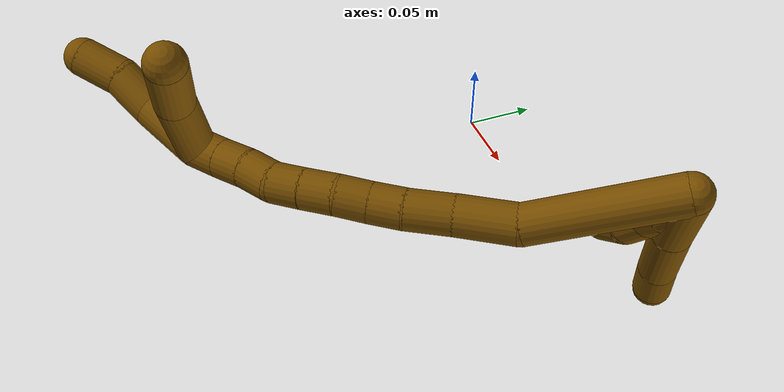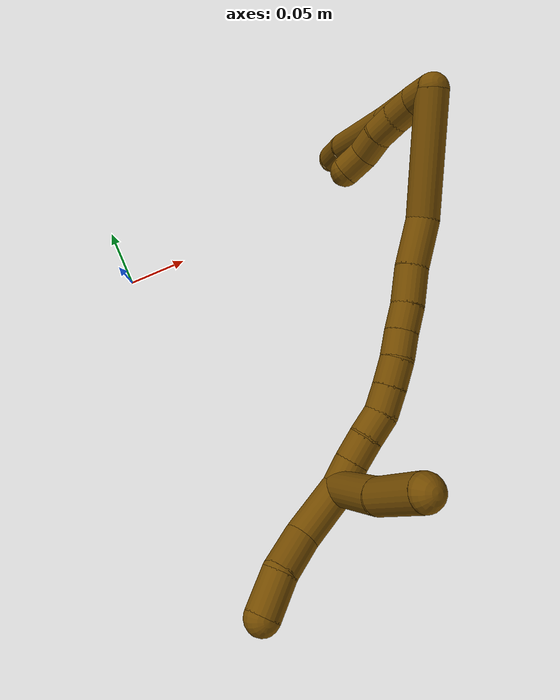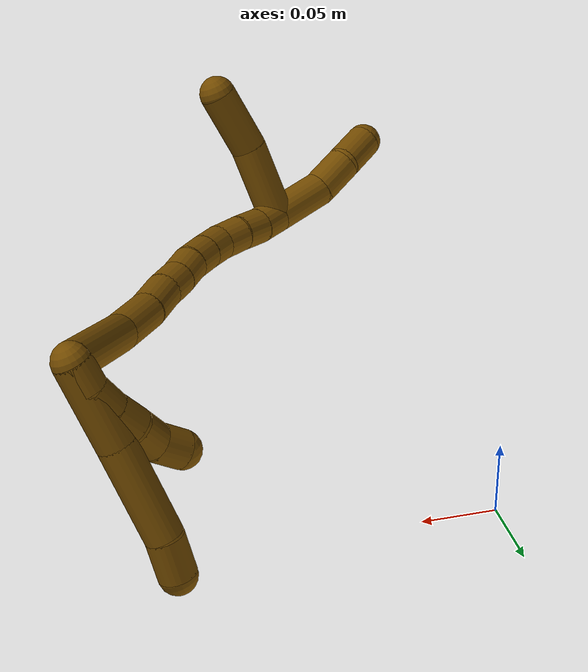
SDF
<sdf version="1.7">
 <world name="default">
  <model name="12">
   <static>0</static>
   <link name="12">
    <collision name="collision-cylinder-e_1_2_8">
     <pose>-0.001056 0.001181 -0.028685 -3.10043 -0.036783 1.45854</pose>
     <geometry><cylinder><radius>0.0125</radius><length>0.057457</length></cylinder></geometry>
     <surface>
      <friction><ode><mu>1.16</mu><mu2>1.16</mu2><slip1>0</slip1><slip2>0</slip2></ode></friction>
      <contact><ode><kp>1e+06</kp><kd>1</kd><max_vel>0</max_vel><min_depth>0.001</min_depth></ode></contact>
     </surface>
    </collision>
    <visual name="visual-cylinder-e_1_2_8">
     <pose>-0.001056 0.001181 -0.028685 -3.10043 -0.036783 1.45854</pose>
     <geometry><cylinder><radius>0.0125</radius><length>0.057457</length></cylinder></geometry>
     <material><ambient>0.466667 0.301961 0 1</ambient></material>
    </visual>
    <collision name="collision-cylinder-e_2_8_9">
     <pose>-0.003466 0.00511 -0.089694 -3.05682 -0.041681 0.913543</pose>
     <geometry><cylinder><radius>0.0125</radius><length>0.064939</length></cylinder></geometry>
     <surface>
      <friction><ode><mu>1.16</mu><mu2>1.16</mu2><slip1>0</slip1><slip2>0</slip2></ode></friction>
      <contact><ode><kp>1e+06</kp><kd>1</kd><max_vel>0</max_vel><min_depth>0.001</min_depth></ode></contact>
     </surface>
    </collision>
    <visual name="visual-cylinder-e_2_8_9">
     <pose>-0.003466 0.00511 -0.089694 -3.05682 -0.041681 0.913543</pose>
     <geometry><cylinder><radius>0.0125</radius><length>0.064939</length></cylinder></geometry>
     <material><ambient>0.466667 0.301961 0 1</ambient></material>
    </visual>
    <collision name="collision-cylinder-e_3_9_6">
     <pose>-0.003208 0.008379 -0.135717 -3.10349 0.116985 -2.51238</pose>
     <geometry><cylinder><radius>0.0125</radius><length>0.027604</length></cylinder></geometry>
     <surface>
      <friction><ode><mu>1.16</mu><mu2>1.16</mu2><slip1>0</slip1><slip2>0</slip2></ode></friction>
      <contact><ode><kp>1e+06</kp><kd>1</kd><max_vel>0</max_vel><min_depth>0.001</min_depth></ode></contact>
     </surface>
    </collision>
    <visual name="visual-cylinder-e_3_9_6">
     <pose>-0.003208 0.008379 -0.135717 -3.10349 0.116985 -2.51238</pose>
     <geometry><cylinder><radius>0.0125</radius><length>0.027604</length></cylinder></geometry>
     <material><ambient>0.466667 0.301961 0 1</ambient></material>
    </visual>
    <collision name="collision-cylinder-e_1_2_10">
     <pose>-0.00071 0.000349 -0.009969 -3.10663 -0.071053 2.22725</pose>
     <geometry><cylinder><radius>0.0125</radius><length>0.02</length></cylinder></geometry>
     <surface>
      <friction><ode><mu>1.16</mu><mu2>1.16</mu2><slip1>0</slip1><slip2>0</slip2></ode></friction>
      <contact><ode><kp>1e+06</kp><kd>1</kd><max_vel>0</max_vel><min_depth>0.001</min_depth></ode></contact>
     </surface>
    </collision>
    <visual name="visual-cylinder-e_1_2_10">
     <pose>-0.00071 0.000349 -0.009969 -3.10663 -0.071053 2.22725</pose>
     <geometry><cylinder><radius>0.0125</radius><length>0.02</length></cylinder></geometry>
     <material><ambient>0.466667 0.301961 0 1</ambient></material>
    </visual>
    <collision name="collision-cylinder-e_2_10_11">
     <pose>-0.003865 -0.001581 -0.029362 2.90437 -0.247051 -1.61176</pose>
     <geometry><cylinder><radius>0.0125</radius><length>0.02</length></cylinder></geometry>
     <surface>
      <friction><ode><mu>1.16</mu><mu2>1.16</mu2><slip1>0</slip1><slip2>0</slip2></ode></friction>
      <contact><ode><kp>1e+06</kp><kd>1</kd><max_vel>0</max_vel><min_depth>0.001</min_depth></ode></contact>
     </surface>
    </collision>
    <visual name="visual-cylinder-e_2_10_11">
     <pose>-0.003865 -0.001581 -0.029362 2.90437 -0.247051 -1.61176</pose>
     <geometry><cylinder><radius>0.0125</radius><length>0.02</length></cylinder></geometry>
     <material><ambient>0.466667 0.301961 0 1</ambient></material>
    </visual>
    <collision name="collision-cylinder-e_3_11_12">
     <pose>-0.00941 -0.007163 -0.047702 2.78678 -0.315077 -1.45006</pose>
     <geometry><cylinder><radius>0.0125</radius><length>0.02</length></cylinder></geometry>
     <surface>
      <friction><ode><mu>1.16</mu><mu2>1.16</mu2><slip1>0</slip1><slip2>0</slip2></ode></friction>
      <contact><ode><kp>1e+06</kp><kd>1</kd><max_vel>0</max_vel><min_depth>0.001</min_depth></ode></contact>
     </surface>
    </collision>
    <visual name="visual-cylinder-e_3_11_12">
     <pose>-0.00941 -0.007163 -0.047702 2.78678 -0.315077 -1.45006</pose>
     <geometry><cylinder><radius>0.0125</radius><length>0.02</length></cylinder></geometry>
     <material><ambient>0.466667 0.301961 0 1</ambient></material>
    </visual>
    <collision name="collision-cylinder-e_4_12_13">
     <pose>-0.014347 -0.014913 -0.065384 2.67216 -0.184875 -0.739668</pose>
     <geometry><cylinder><radius>0.0125</radius><length>0.02</length></cylinder></geometry>
     <surface>
      <friction><ode><mu>1.16</mu><mu2>1.16</mu2><slip1>0</slip1><slip2>0</slip2></ode></friction>
      <contact><ode><kp>1e+06</kp><kd>1</kd><max_vel>0</max_vel><min_depth>0.001</min_depth></ode></contact>
     </surface>
    </collision>
    <visual name="visual-cylinder-e_4_12_13">
     <pose>-0.014347 -0.014913 -0.065384 2.67216 -0.184875 -0.739668</pose>
     <geometry><cylinder><radius>0.0125</radius><length>0.02</length></cylinder></geometry>
     <material><ambient>0.466667 0.301961 0 1</ambient></material>
    </visual>
    <collision name="collision-cylinder-e_5_13_5">
     <pose>-0.021047 -0.023923 -0.081603 2.59223 -0.507755 -1.48835</pose>
     <geometry><cylinder><radius>0.0125</radius><length>0.02</length></cylinder></geometry>
     <surface>
      <friction><ode><mu>1.16</mu><mu2>1.16</mu2><slip1>0</slip1><slip2>0</slip2></ode></friction>
      <contact><ode><kp>1e+06</kp><kd>1</kd><max_vel>0</max_vel><min_depth>0.001</min_depth></ode></contact>
     </surface>
    </collision>
    <visual name="visual-cylinder-e_5_13_5">
     <pose>-0.021047 -0.023923 -0.081603 2.59223 -0.507755 -1.48835</pose>
     <geometry><cylinder><radius>0.0125</radius><length>0.02</length></cylinder></geometry>
     <material><ambient>0.466667 0.301961 0 1</ambient></material>
    </visual>
    <collision name="collision-cylinder-e_1_2_14">
     <pose>-0.000479 -0.044082 -0.014252 1.88349 -0.010349 -0.014222</pose>
     <geometry><cylinder><radius>0.0125</radius><length>0.092662</length></cylinder></geometry>
     <surface>
      <friction><ode><mu>1.16</mu><mu2>1.16</mu2><slip1>0</slip1><slip2>0</slip2></ode></friction>
      <contact><ode><kp>1e+06</kp><kd>1</kd><max_vel>0</max_vel><min_depth>0.001</min_depth></ode></contact>
     </surface>
    </collision>
    <visual name="visual-cylinder-e_1_2_14">
     <pose>-0.000479 -0.044082 -0.014252 1.88349 -0.010349 -0.014222</pose>
     <geometry><cylinder><radius>0.0125</radius><length>0.092662</length></cylinder></geometry>
     <material><ambient>0.466667 0.301961 0 1</ambient></material>
    </visual>
    <collision name="collision-cylinder-e_2_14_15">
     <pose>-0.006422 -0.10572 -0.03136 1.73212 -0.297978 -0.349409</pose>
     <geometry><cylinder><radius>0.0125</radius><length>0.037214</length></cylinder></geometry>
     <surface>
      <friction><ode><mu>1.16</mu><mu2>1.16</mu2><slip1>0</slip1><slip2>0</slip2></ode></friction>
      <contact><ode><kp>1e+06</kp><kd>1</kd><max_vel>0</max_vel><min_depth>0.001</min_depth></ode></contact>
     </surface>
    </collision>
    <visual name="visual-cylinder-e_2_14_15">
     <pose>-0.006422 -0.10572 -0.03136 1.73212 -0.297978 -0.349409</pose>
     <geometry><cylinder><radius>0.0125</radius><length>0.037214</length></cylinder></geometry>
     <material><ambient>0.466667 0.301961 0 1</ambient></material>
    </visual>
    <collision name="collision-cylinder-e_3_15_16">
     <pose>-0.015113 -0.137203 -0.035082 1.63279 -0.227399 -0.241816</pose>
     <geometry><cylinder><radius>0.0125</radius><length>0.028644</length></cylinder></geometry>
     <surface>
      <friction><ode><mu>1.16</mu><mu2>1.16</mu2><slip1>0</slip1><slip2>0</slip2></ode></friction>
      <contact><ode><kp>1e+06</kp><kd>1</kd><max_vel>0</max_vel><min_depth>0.001</min_depth></ode></contact>
     </surface>
    </collision>
    <visual name="visual-cylinder-e_3_15_16">
     <pose>-0.015113 -0.137203 -0.035082 1.63279 -0.227399 -0.241816</pose>
     <geometry><cylinder><radius>0.0125</radius><length>0.028644</length></cylinder></geometry>
     <material><ambient>0.466667 0.301961 0 1</ambient></material>
    </visual>
    <collision name="collision-cylinder-e_4_16_17">
     <pose>-0.021621 -0.160793 -0.036998 1.67915 -0.325275 -0.361809</pose>
     <geometry><cylinder><radius>0.0125</radius><length>0.020518</length></cylinder></geometry>
     <surface>
      <friction><ode><mu>1.16</mu><mu2>1.16</mu2><slip1>0</slip1><slip2>0</slip2></ode></friction>
      <contact><ode><kp>1e+06</kp><kd>1</kd><max_vel>0</max_vel><min_depth>0.001</min_depth></ode></contact>
     </surface>
    </collision>
    <visual name="visual-cylinder-e_4_16_17">
     <pose>-0.021621 -0.160793 -0.036998 1.67915 -0.325275 -0.361809</pose>
     <geometry><cylinder><radius>0.0125</radius><length>0.020518</length></cylinder></geometry>
     <material><ambient>0.466667 0.301961 0 1</ambient></material>
    </visual>
    <collision name="collision-cylinder-e_5_17_18">
     <pose>-0.028041 -0.180004 -0.038116 1.57777 -0.317958 -0.320144</pose>
     <geometry><cylinder><radius>0.0125</radius><length>0.020101</length></cylinder></geometry>
     <surface>
      <friction><ode><mu>1.16</mu><mu2>1.16</mu2><slip1>0</slip1><slip2>0</slip2></ode></friction>
      <contact><ode><kp>1e+06</kp><kd>1</kd><max_vel>0</max_vel><min_depth>0.001</min_depth></ode></contact>
     </surface>
    </collision>
    <visual name="visual-cylinder-e_5_17_18">
     <pose>-0.028041 -0.180004 -0.038116 1.57777 -0.317958 -0.320144</pose>
     <geometry><cylinder><radius>0.0125</radius><length>0.020101</length></cylinder></geometry>
     <material><ambient>0.466667 0.301961 0 1</ambient></material>
    </visual>
    <collision name="collision-cylinder-e_6_18_19">
     <pose>-0.034648 -0.199177 -0.039789 1.73618 -0.341123 -0.401257</pose>
     <geometry><cylinder><radius>0.0125</radius><length>0.020715</length></cylinder></geometry>
     <surface>
      <friction><ode><mu>1.16</mu><mu2>1.16</mu2><slip1>0</slip1><slip2>0</slip2></ode></friction>
      <contact><ode><kp>1e+06</kp><kd>1</kd><max_vel>0</max_vel><min_depth>0.001</min_depth></ode></contact>
     </surface>
    </collision>
    <visual name="visual-cylinder-e_6_18_19">
     <pose>-0.034648 -0.199177 -0.039789 1.73618 -0.341123 -0.401257</pose>
     <geometry><cylinder><radius>0.0125</radius><length>0.020715</length></cylinder></geometry>
     <material><ambient>0.466667 0.301961 0 1</ambient></material>
    </visual>
    <collision name="collision-cylinder-e_7_19_20">
     <pose>-0.041752 -0.217991 -0.043175 1.76209 -0.370914 -0.447255</pose>
     <geometry><cylinder><radius>0.0125</radius><length>0.02008</length></cylinder></geometry>
     <surface>
      <friction><ode><mu>1.16</mu><mu2>1.16</mu2><slip1>0</slip1><slip2>0</slip2></ode></friction>
      <contact><ode><kp>1e+06</kp><kd>1</kd><max_vel>0</max_vel><min_depth>0.001</min_depth></ode></contact>
     </surface>
    </collision>
    <visual name="visual-cylinder-e_7_19_20">
     <pose>-0.041752 -0.217991 -0.043175 1.76209 -0.370914 -0.447255</pose>
     <geometry><cylinder><radius>0.0125</radius><length>0.02008</length></cylinder></geometry>
     <material><ambient>0.466667 0.301961 0 1</ambient></material>
    </visual>
    <collision name="collision-cylinder-e_8_20_21">
     <pose>-0.051447 -0.234902 -0.046941 1.82255 -0.649437 -0.819238</pose>
     <geometry><cylinder><radius>0.0125</radius><length>0.020028</length></cylinder></geometry>
     <surface>
      <friction><ode><mu>1.16</mu><mu2>1.16</mu2><slip1>0</slip1><slip2>0</slip2></ode></friction>
      <contact><ode><kp>1e+06</kp><kd>1</kd><max_vel>0</max_vel><min_depth>0.001</min_depth></ode></contact>
     </surface>
    </collision>
    <visual name="visual-cylinder-e_8_20_21">
     <pose>-0.051447 -0.234902 -0.046941 1.82255 -0.649437 -0.819238</pose>
     <geometry><cylinder><radius>0.0125</radius><length>0.020028</length></cylinder></geometry>
     <material><ambient>0.466667 0.301961 0 1</ambient></material>
    </visual>
    <collision name="collision-cylinder-e_9_21_22">
     <pose>-0.062813 -0.250687 -0.051578 1.88848 -0.559112 -0.755132</pose>
     <geometry><cylinder><radius>0.0125</radius><length>0.020021</length></cylinder></geometry>
     <surface>
      <friction><ode><mu>1.16</mu><mu2>1.16</mu2><slip1>0</slip1><slip2>0</slip2></ode></friction>
      <contact><ode><kp>1e+06</kp><kd>1</kd><max_vel>0</max_vel><min_depth>0.001</min_depth></ode></contact>
     </surface>
    </collision>
    <visual name="visual-cylinder-e_9_21_22">
     <pose>-0.062813 -0.250687 -0.051578 1.88848 -0.559112 -0.755132</pose>
     <geometry><cylinder><radius>0.0125</radius><length>0.020021</length></cylinder></geometry>
     <material><ambient>0.466667 0.301961 0 1</ambient></material>
    </visual>
    <collision name="collision-cylinder-e_10_22_1">
     <pose>-0.073483 -0.267075 -0.055685 1.74398 -0.565181 -0.665436</pose>
     <geometry><cylinder><radius>0.0125</radius><length>0.020018</length></cylinder></geometry>
     <surface>
      <friction><ode><mu>1.16</mu><mu2>1.16</mu2><slip1>0</slip1><slip2>0</slip2></ode></friction>
      <contact><ode><kp>1e+06</kp><kd>1</kd><max_vel>0</max_vel><min_depth>0.001</min_depth></ode></contact>
     </surface>
    </collision>
    <visual name="visual-cylinder-e_10_22_1">
     <pose>-0.073483 -0.267075 -0.055685 1.74398 -0.565181 -0.665436</pose>
     <geometry><cylinder><radius>0.0125</radius><length>0.020018</length></cylinder></geometry>
     <material><ambient>0.466667 0.301961 0 1</ambient></material>
    </visual>
    <collision name="collision-cylinder-e_1_1_23">
     <pose>-0.094171 -0.289715 -0.058114 1.63859 -0.818429 -0.869103</pose>
     <geometry><cylinder><radius>0.0125</radius><length>0.04199</length></cylinder></geometry>
     <surface>
      <friction><ode><mu>1.16</mu><mu2>1.16</mu2><slip1>0</slip1><slip2>0</slip2></ode></friction>
      <contact><ode><kp>1e+06</kp><kd>1</kd><max_vel>0</max_vel><min_depth>0.001</min_depth></ode></contact>
     </surface>
    </collision>
    <visual name="visual-cylinder-e_1_1_23">
     <pose>-0.094171 -0.289715 -0.058114 1.63859 -0.818429 -0.869103</pose>
     <geometry><cylinder><radius>0.0125</radius><length>0.04199</length></cylinder></geometry>
     <material><ambient>0.466667 0.301961 0 1</ambient></material>
    </visual>
    <collision name="collision-cylinder-e_2_23_24">
     <pose>-0.119841 -0.313468 -0.05609 1.26348 -0.807098 -0.605693</pose>
     <geometry><cylinder><radius>0.0125</radius><length>0.028637</length></cylinder></geometry>
     <surface>
      <friction><ode><mu>1.16</mu><mu2>1.16</mu2><slip1>0</slip1><slip2>0</slip2></ode></friction>
      <contact><ode><kp>1e+06</kp><kd>1</kd><max_vel>0</max_vel><min_depth>0.001</min_depth></ode></contact>
     </surface>
    </collision>
    <visual name="visual-cylinder-e_2_23_24">
     <pose>-0.119841 -0.313468 -0.05609 1.26348 -0.807098 -0.605693</pose>
     <geometry><cylinder><radius>0.0125</radius><length>0.028637</length></cylinder></geometry>
     <material><ambient>0.466667 0.301961 0 1</ambient></material>
    </visual>
    <collision name="collision-cylinder-e_3_24_4">
     <pose>-0.138036 -0.335273 -0.05204 1.48574 -0.56415 -0.520232</pose>
     <geometry><cylinder><radius>0.0125</radius><length>0.029373</length></cylinder></geometry>
     <surface>
      <friction><ode><mu>1.16</mu><mu2>1.16</mu2><slip1>0</slip1><slip2>0</slip2></ode></friction>
      <contact><ode><kp>1e+06</kp><kd>1</kd><max_vel>0</max_vel><min_depth>0.001</min_depth></ode></contact>
     </surface>
    </collision>
    <visual name="visual-cylinder-e_3_24_4">
     <pose>-0.138036 -0.335273 -0.05204 1.48574 -0.56415 -0.520232</pose>
     <geometry><cylinder><radius>0.0125</radius><length>0.029373</length></cylinder></geometry>
     <material><ambient>0.466667 0.301961 0 1</ambient></material>
    </visual>
    <collision name="collision-cylinder-e_1_1_25">
     <pose>-0.079439 -0.276506 -0.029999 0.040683 -0.021908 -0.000446</pose>
     <geometry><cylinder><radius>0.0125</radius><length>0.054345</length></cylinder></geometry>
     <surface>
      <friction><ode><mu>1.16</mu><mu2>1.16</mu2><slip1>0</slip1><slip2>0</slip2></ode></friction>
      <contact><ode><kp>1e+06</kp><kd>1</kd><max_vel>0</max_vel><min_depth>0.001</min_depth></ode></contact>
     </surface>
    </collision>
    <visual name="visual-cylinder-e_1_1_25">
     <pose>-0.079439 -0.276506 -0.029999 0.040683 -0.021908 -0.000446</pose>
     <geometry><cylinder><radius>0.0125</radius><length>0.054345</length></cylinder></geometry>
     <material><ambient>0.466667 0.301961 0 1</ambient></material>
    </visual>
    <collision name="collision-cylinder-e_2_25_3">
     <pose>-0.078137 -0.275291 0.019775 -0.102126 0.083212 -0.004255</pose>
     <geometry><cylinder><radius>0.0125</radius><length>0.045655</length></cylinder></geometry>
     <surface>
      <friction><ode><mu>1.16</mu><mu2>1.16</mu2><slip1>0</slip1><slip2>0</slip2></ode></friction>
      <contact><ode><kp>1e+06</kp><kd>1</kd><max_vel>0</max_vel><min_depth>0.001</min_depth></ode></contact>
     </surface>
    </collision>
    <visual name="visual-cylinder-e_2_25_3">
     <pose>-0.078137 -0.275291 0.019775 -0.102126 0.083212 -0.004255</pose>
     <geometry><cylinder><radius>0.0125</radius><length>0.045655</length></cylinder></geometry>
     <material><ambient>0.466667 0.301961 0 1</ambient></material>
    </visual>
    <collision name="collision-sphere-3">
     <pose>-0.076239 -0.272972 0.042405 0 -0 0</pose>
     <geometry><sphere><radius>0.0125</radius></sphere></geometry>
     <surface>
      <friction><ode><mu>1.16</mu><mu2>1.16</mu2><slip1>0</slip1><slip2>0</slip2></ode></friction>
      <contact><ode><kp>1e+06</kp><kd>1</kd><max_vel>0</max_vel><min_depth>0.001</min_depth></ode></contact>
     </surface>
    </collision>
    <visual name="visual-sphere-3">
     <pose>-0.076239 -0.272972 0.042405 0 -0 0</pose>
     <geometry><sphere><radius>0.0125</radius></sphere></geometry>
     <material><ambient>0.466667 0.301961 0 1</ambient></material>
    </visual>
    <collision name="collision-sphere-25">
     <pose>-0.080034 -0.27761 -0.002855 0 -0 0</pose>
     <geometry><sphere><radius>0.0125</radius></sphere></geometry>
     <surface>
      <friction><ode><mu>1.16</mu><mu2>1.16</mu2><slip1>0</slip1><slip2>0</slip2></ode></friction>
      <contact><ode><kp>1e+06</kp><kd>1</kd><max_vel>0</max_vel><min_depth>0.001</min_depth></ode></contact>
     </surface>
    </collision>
    <visual name="visual-sphere-25">
     <pose>-0.080034 -0.27761 -0.002855 0 -0 0</pose>
     <geometry><sphere><radius>0.0125</radius></sphere></geometry>
     <material><ambient>0.466667 0.301961 0 1</ambient></material>
    </visual>
    <collision name="collision-sphere-4">
     <pose>-0.145889 -0.347639 -0.050986 0 -0 0</pose>
     <geometry><sphere><radius>0.0125</radius></sphere></geometry>
     <surface>
      <friction><ode><mu>1.16</mu><mu2>1.16</mu2><slip1>0</slip1><slip2>0</slip2></ode></friction>
      <contact><ode><kp>1e+06</kp><kd>1</kd><max_vel>0</max_vel><min_depth>0.001</min_depth></ode></contact>
     </surface>
    </collision>
    <visual name="visual-sphere-4">
     <pose>-0.145889 -0.347639 -0.050986 0 -0 0</pose>
     <geometry><sphere><radius>0.0125</radius></sphere></geometry>
     <material><ambient>0.466667 0.301961 0 1</ambient></material>
    </visual>
    <collision name="collision-sphere-24">
     <pose>-0.130183 -0.322907 -0.053094 0 -0 0</pose>
     <geometry><sphere><radius>0.0125</radius></sphere></geometry>
     <surface>
      <friction><ode><mu>1.16</mu><mu2>1.16</mu2><slip1>0</slip1><slip2>0</slip2></ode></friction>
      <contact><ode><kp>1e+06</kp><kd>1</kd><max_vel>0</max_vel><min_depth>0.001</min_depth></ode></contact>
     </surface>
    </collision>
    <visual name="visual-sphere-24">
     <pose>-0.130183 -0.322907 -0.053094 0 -0 0</pose>
     <geometry><sphere><radius>0.0125</radius></sphere></geometry>
     <material><ambient>0.466667 0.301961 0 1</ambient></material>
    </visual>
    <collision name="collision-sphere-23">
     <pose>-0.109499 -0.304029 -0.059086 0 -0 0</pose>
     <geometry><sphere><radius>0.0125</radius></sphere></geometry>
     <surface>
      <friction><ode><mu>1.16</mu><mu2>1.16</mu2><slip1>0</slip1><slip2>0</slip2></ode></friction>
      <contact><ode><kp>1e+06</kp><kd>1</kd><max_vel>0</max_vel><min_depth>0.001</min_depth></ode></contact>
     </surface>
    </collision>
    <visual name="visual-sphere-23">
     <pose>-0.109499 -0.304029 -0.059086 0 -0 0</pose>
     <geometry><sphere><radius>0.0125</radius></sphere></geometry>
     <material><ambient>0.466667 0.301961 0 1</ambient></material>
    </visual>
    <collision name="collision-sphere-1">
     <pose>-0.078844 -0.275401 -0.057142 0 -0 0</pose>
     <geometry><sphere><radius>0.0125</radius></sphere></geometry>
     <surface>
      <friction><ode><mu>1.16</mu><mu2>1.16</mu2><slip1>0</slip1><slip2>0</slip2></ode></friction>
      <contact><ode><kp>1e+06</kp><kd>1</kd><max_vel>0</max_vel><min_depth>0.001</min_depth></ode></contact>
     </surface>
    </collision>
    <visual name="visual-sphere-1">
     <pose>-0.078844 -0.275401 -0.057142 0 -0 0</pose>
     <geometry><sphere><radius>0.0125</radius></sphere></geometry>
     <material><ambient>0.466667 0.301961 0 1</ambient></material>
    </visual>
    <collision name="collision-sphere-22">
     <pose>-0.068123 -0.258749 -0.054229 0 -0 0</pose>
     <geometry><sphere><radius>0.0125</radius></sphere></geometry>
     <surface>
      <friction><ode><mu>1.16</mu><mu2>1.16</mu2><slip1>0</slip1><slip2>0</slip2></ode></friction>
      <contact><ode><kp>1e+06</kp><kd>1</kd><max_vel>0</max_vel><min_depth>0.001</min_depth></ode></contact>
     </surface>
    </collision>
    <visual name="visual-sphere-22">
     <pose>-0.068123 -0.258749 -0.054229 0 -0 0</pose>
     <geometry><sphere><radius>0.0125</radius></sphere></geometry>
     <material><ambient>0.466667 0.301961 0 1</ambient></material>
    </visual>
    <collision name="collision-sphere-21">
     <pose>-0.057503 -0.242626 -0.048927 0 -0 0</pose>
     <geometry><sphere><radius>0.0125</radius></sphere></geometry>
     <surface>
      <friction><ode><mu>1.16</mu><mu2>1.16</mu2><slip1>0</slip1><slip2>0</slip2></ode></friction>
      <contact><ode><kp>1e+06</kp><kd>1</kd><max_vel>0</max_vel><min_depth>0.001</min_depth></ode></contact>
     </surface>
    </collision>
    <visual name="visual-sphere-21">
     <pose>-0.057503 -0.242626 -0.048927 0 -0 0</pose>
     <geometry><sphere><radius>0.0125</radius></sphere></geometry>
     <material><ambient>0.466667 0.301961 0 1</ambient></material>
    </visual>
    <collision name="collision-sphere-11">
     <pose>-0.006311 -0.00386 -0.038787 0 -0 0</pose>
     <geometry><sphere><radius>0.0125</radius></sphere></geometry>
     <surface>
      <friction><ode><mu>1.16</mu><mu2>1.16</mu2><slip1>0</slip1><slip2>0</slip2></ode></friction>
      <contact><ode><kp>1e+06</kp><kd>1</kd><max_vel>0</max_vel><min_depth>0.001</min_depth></ode></contact>
     </surface>
    </collision>
    <visual name="visual-sphere-11">
     <pose>-0.006311 -0.00386 -0.038787 0 -0 0</pose>
     <geometry><sphere><radius>0.0125</radius></sphere></geometry>
     <material><ambient>0.466667 0.301961 0 1</ambient></material>
    </visual>
    <collision name="collision-sphere-10">
     <pose>-0.00142 0.000697 -0.019937 0 -0 0</pose>
     <geometry><sphere><radius>0.0125</radius></sphere></geometry>
     <surface>
      <friction><ode><mu>1.16</mu><mu2>1.16</mu2><slip1>0</slip1><slip2>0</slip2></ode></friction>
      <contact><ode><kp>1e+06</kp><kd>1</kd><max_vel>0</max_vel><min_depth>0.001</min_depth></ode></contact>
     </surface>
    </collision>
    <visual name="visual-sphere-10">
     <pose>-0.00142 0.000697 -0.019937 0 -0 0</pose>
     <geometry><sphere><radius>0.0125</radius></sphere></geometry>
     <material><ambient>0.466667 0.301961 0 1</ambient></material>
    </visual>
    <collision name="collision-sphere-6">
     <pose>-0.001597 0.008901 -0.149415 0 -0 0</pose>
     <geometry><sphere><radius>0.0125</radius></sphere></geometry>
     <surface>
      <friction><ode><mu>1.16</mu><mu2>1.16</mu2><slip1>0</slip1><slip2>0</slip2></ode></friction>
      <contact><ode><kp>1e+06</kp><kd>1</kd><max_vel>0</max_vel><min_depth>0.001</min_depth></ode></contact>
     </surface>
    </collision>
    <visual name="visual-sphere-6">
     <pose>-0.001597 0.008901 -0.149415 0 -0 0</pose>
     <geometry><sphere><radius>0.0125</radius></sphere></geometry>
     <material><ambient>0.466667 0.301961 0 1</ambient></material>
    </visual>
    <collision name="collision-sphere-9">
     <pose>-0.004819 0.007857 -0.122019 0 -0 0</pose>
     <geometry><sphere><radius>0.0125</radius></sphere></geometry>
     <surface>
      <friction><ode><mu>1.16</mu><mu2>1.16</mu2><slip1>0</slip1><slip2>0</slip2></ode></friction>
      <contact><ode><kp>1e+06</kp><kd>1</kd><max_vel>0</max_vel><min_depth>0.001</min_depth></ode></contact>
     </surface>
    </collision>
    <visual name="visual-sphere-9">
     <pose>-0.004819 0.007857 -0.122019 0 -0 0</pose>
     <geometry><sphere><radius>0.0125</radius></sphere></geometry>
     <material><ambient>0.466667 0.301961 0 1</ambient></material>
    </visual>
    <collision name="collision-sphere-2">
     <geometry><sphere><radius>0.0125</radius></sphere></geometry>
     <surface>
      <friction><ode><mu>1.16</mu><mu2>1.16</mu2><slip1>0</slip1><slip2>0</slip2></ode></friction>
      <contact><ode><kp>1e+06</kp><kd>1</kd><max_vel>0</max_vel><min_depth>0.001</min_depth></ode></contact>
     </surface>
    </collision>
    <visual name="visual-sphere-2">
     <geometry><sphere><radius>0.0125</radius></sphere></geometry>
     <material><ambient>0.466667 0.301961 0 1</ambient></material>
    </visual>
    <collision name="collision-sphere-19">
     <pose>-0.038113 -0.208805 -0.041396 0 -0 0</pose>
     <geometry><sphere><radius>0.0125</radius></sphere></geometry>
     <surface>
      <friction><ode><mu>1.16</mu><mu2>1.16</mu2><slip1>0</slip1><slip2>0</slip2></ode></friction>
      <contact><ode><kp>1e+06</kp><kd>1</kd><max_vel>0</max_vel><min_depth>0.001</min_depth></ode></contact>
     </surface>
    </collision>
    <visual name="visual-sphere-19">
     <pose>-0.038113 -0.208805 -0.041396 0 -0 0</pose>
     <geometry><sphere><radius>0.0125</radius></sphere></geometry>
     <material><ambient>0.466667 0.301961 0 1</ambient></material>
    </visual>
    <collision name="collision-sphere-8">
     <pose>-0.002113 0.002363 -0.057369 0 -0 0</pose>
     <geometry><sphere><radius>0.0125</radius></sphere></geometry>
     <surface>
      <friction><ode><mu>1.16</mu><mu2>1.16</mu2><slip1>0</slip1><slip2>0</slip2></ode></friction>
      <contact><ode><kp>1e+06</kp><kd>1</kd><max_vel>0</max_vel><min_depth>0.001</min_depth></ode></contact>
     </surface>
    </collision>
    <visual name="visual-sphere-8">
     <pose>-0.002113 0.002363 -0.057369 0 -0 0</pose>
     <geometry><sphere><radius>0.0125</radius></sphere></geometry>
     <material><ambient>0.466667 0.301961 0 1</ambient></material>
    </visual>
    <collision name="collision-sphere-12">
     <pose>-0.012509 -0.010466 -0.056618 0 -0 0</pose>
     <geometry><sphere><radius>0.0125</radius></sphere></geometry>
     <surface>
      <friction><ode><mu>1.16</mu><mu2>1.16</mu2><slip1>0</slip1><slip2>0</slip2></ode></friction>
      <contact><ode><kp>1e+06</kp><kd>1</kd><max_vel>0</max_vel><min_depth>0.001</min_depth></ode></contact>
     </surface>
    </collision>
    <visual name="visual-sphere-12">
     <pose>-0.012509 -0.010466 -0.056618 0 -0 0</pose>
     <geometry><sphere><radius>0.0125</radius></sphere></geometry>
     <material><ambient>0.466667 0.301961 0 1</ambient></material>
    </visual>
    <collision name="collision-sphere-13">
     <pose>-0.016185 -0.01936 -0.07415 0 -0 0</pose>
     <geometry><sphere><radius>0.0125</radius></sphere></geometry>
     <surface>
      <friction><ode><mu>1.16</mu><mu2>1.16</mu2><slip1>0</slip1><slip2>0</slip2></ode></friction>
      <contact><ode><kp>1e+06</kp><kd>1</kd><max_vel>0</max_vel><min_depth>0.001</min_depth></ode></contact>
     </surface>
    </collision>
    <visual name="visual-sphere-13">
     <pose>-0.016185 -0.01936 -0.07415 0 -0 0</pose>
     <geometry><sphere><radius>0.0125</radius></sphere></geometry>
     <material><ambient>0.466667 0.301961 0 1</ambient></material>
    </visual>
    <collision name="collision-sphere-5">
     <pose>-0.025909 -0.028485 -0.089056 0 -0 0</pose>
     <geometry><sphere><radius>0.0125</radius></sphere></geometry>
     <surface>
      <friction><ode><mu>1.16</mu><mu2>1.16</mu2><slip1>0</slip1><slip2>0</slip2></ode></friction>
      <contact><ode><kp>1e+06</kp><kd>1</kd><max_vel>0</max_vel><min_depth>0.001</min_depth></ode></contact>
     </surface>
    </collision>
    <visual name="visual-sphere-5">
     <pose>-0.025909 -0.028485 -0.089056 0 -0 0</pose>
     <geometry><sphere><radius>0.0125</radius></sphere></geometry>
     <material><ambient>0.466667 0.301961 0 1</ambient></material>
    </visual>
    <collision name="collision-sphere-14">
     <pose>-0.000959 -0.088164 -0.028503 0 -0 0</pose>
     <geometry><sphere><radius>0.0125</radius></sphere></geometry>
     <surface>
      <friction><ode><mu>1.16</mu><mu2>1.16</mu2><slip1>0</slip1><slip2>0</slip2></ode></friction>
      <contact><ode><kp>1e+06</kp><kd>1</kd><max_vel>0</max_vel><min_depth>0.001</min_depth></ode></contact>
     </surface>
    </collision>
    <visual name="visual-sphere-14">
     <pose>-0.000959 -0.088164 -0.028503 0 -0 0</pose>
     <geometry><sphere><radius>0.0125</radius></sphere></geometry>
     <material><ambient>0.466667 0.301961 0 1</ambient></material>
    </visual>
    <collision name="collision-sphere-15">
     <pose>-0.011884 -0.123276 -0.034217 0 -0 0</pose>
     <geometry><sphere><radius>0.0125</radius></sphere></geometry>
     <surface>
      <friction><ode><mu>1.16</mu><mu2>1.16</mu2><slip1>0</slip1><slip2>0</slip2></ode></friction>
      <contact><ode><kp>1e+06</kp><kd>1</kd><max_vel>0</max_vel><min_depth>0.001</min_depth></ode></contact>
     </surface>
    </collision>
    <visual name="visual-sphere-15">
     <pose>-0.011884 -0.123276 -0.034217 0 -0 0</pose>
     <geometry><sphere><radius>0.0125</radius></sphere></geometry>
     <material><ambient>0.466667 0.301961 0 1</ambient></material>
    </visual>
    <collision name="collision-sphere-16">
     <pose>-0.018342 -0.151129 -0.035947 0 -0 0</pose>
     <geometry><sphere><radius>0.0125</radius></sphere></geometry>
     <surface>
      <friction><ode><mu>1.16</mu><mu2>1.16</mu2><slip1>0</slip1><slip2>0</slip2></ode></friction>
      <contact><ode><kp>1e+06</kp><kd>1</kd><max_vel>0</max_vel><min_depth>0.001</min_depth></ode></contact>
     </surface>
    </collision>
    <visual name="visual-sphere-16">
     <pose>-0.018342 -0.151129 -0.035947 0 -0 0</pose>
     <geometry><sphere><radius>0.0125</radius></sphere></geometry>
     <material><ambient>0.466667 0.301961 0 1</ambient></material>
    </visual>
    <collision name="collision-sphere-17">
     <pose>-0.024899 -0.170457 -0.038049 0 -0 0</pose>
     <geometry><sphere><radius>0.0125</radius></sphere></geometry>
     <surface>
      <friction><ode><mu>1.16</mu><mu2>1.16</mu2><slip1>0</slip1><slip2>0</slip2></ode></friction>
      <contact><ode><kp>1e+06</kp><kd>1</kd><max_vel>0</max_vel><min_depth>0.001</min_depth></ode></contact>
     </surface>
    </collision>
    <visual name="visual-sphere-17">
     <pose>-0.024899 -0.170457 -0.038049 0 -0 0</pose>
     <geometry><sphere><radius>0.0125</radius></sphere></geometry>
     <material><ambient>0.466667 0.301961 0 1</ambient></material>
    </visual>
    <collision name="collision-sphere-18">
     <pose>-0.031183 -0.18955 -0.038182 0 -0 0</pose>
     <geometry><sphere><radius>0.0125</radius></sphere></geometry>
     <surface>
      <friction><ode><mu>1.16</mu><mu2>1.16</mu2><slip1>0</slip1><slip2>0</slip2></ode></friction>
      <contact><ode><kp>1e+06</kp><kd>1</kd><max_vel>0</max_vel><min_depth>0.001</min_depth></ode></contact>
     </surface>
    </collision>
    <visual name="visual-sphere-18">
     <pose>-0.031183 -0.18955 -0.038182 0 -0 0</pose>
     <geometry><sphere><radius>0.0125</radius></sphere></geometry>
     <material><ambient>0.466667 0.301961 0 1</ambient></material>
    </visual>
    <collision name="collision-sphere-20">
     <pose>-0.045392 -0.227178 -0.044954 0 -0 0</pose>
     <geometry><sphere><radius>0.0125</radius></sphere></geometry>
     <surface>
      <friction><ode><mu>1.16</mu><mu2>1.16</mu2><slip1>0</slip1><slip2>0</slip2></ode></friction>
      <contact><ode><kp>1e+06</kp><kd>1</kd><max_vel>0</max_vel><min_depth>0.001</min_depth></ode></contact>
     </surface>
    </collision>
    <visual name="visual-sphere-20">
     <pose>-0.045392 -0.227178 -0.044954 0 -0 0</pose>
     <geometry><sphere><radius>0.0125</radius></sphere></geometry>
     <material><ambient>0.466667 0.301961 0 1</ambient></material>
    </visual>
    <inertial>
     <pose>-0.036968 -0.135117 -0.042665 0 -0 0</pose>
     <mass>0.75</mass>
     <inertia>
      <ixx>0.000139</ixx>
      <ixy>0</ixy>
      <ixz>0</ixz>
      <iyy>-1.4e-05</iyy>
      <iyz>0</iyz>
      <izz>9.8e-05</izz>
     </inertia>
    </inertial>
   </link>
   <pose>0.264961 -0.004295 0.14902 0.060182 0.395908 -0.303748</pose>
  </model>
 </world>
</sdf>
